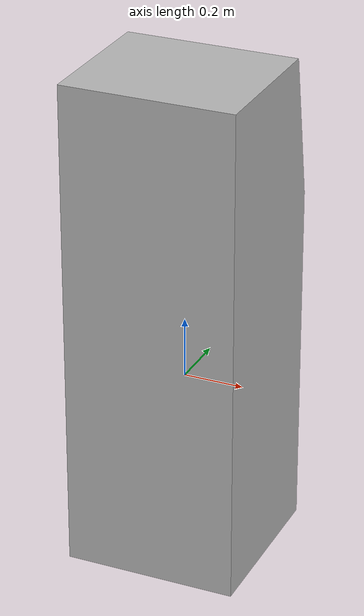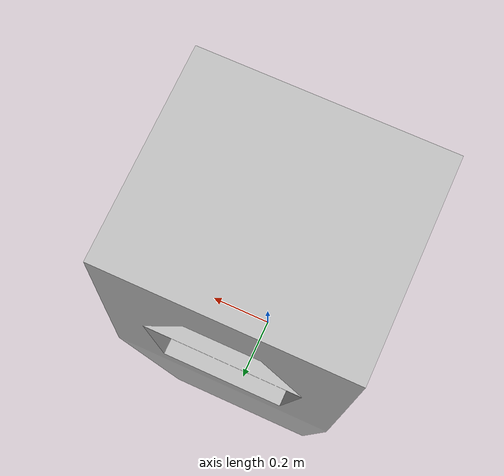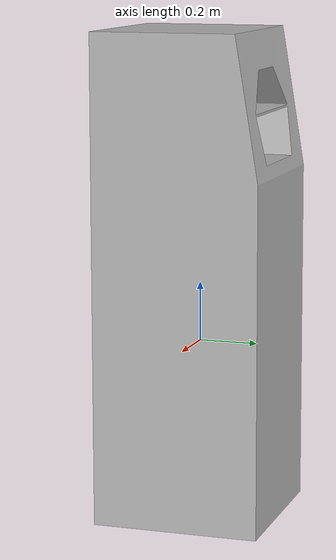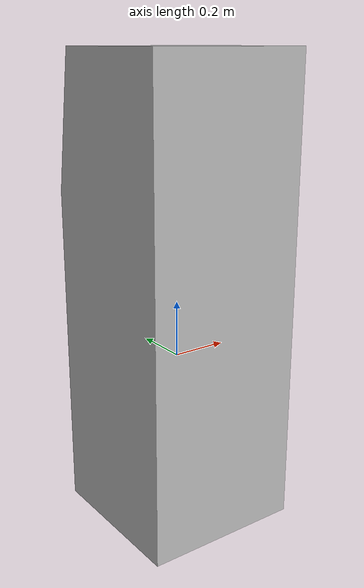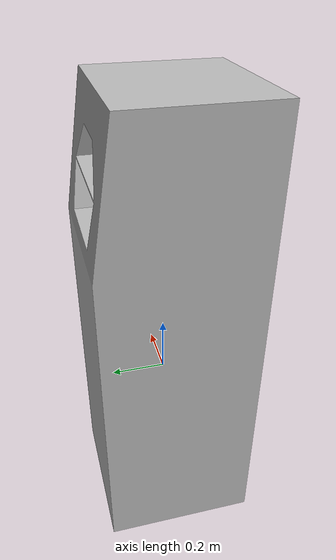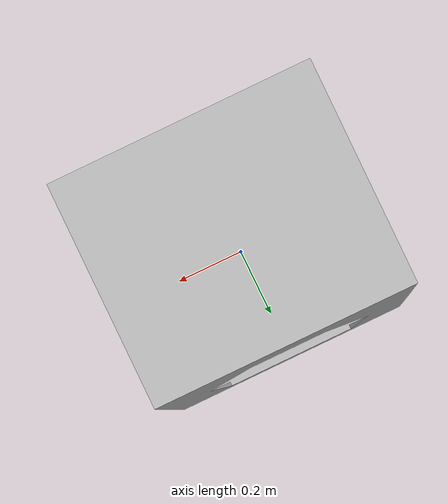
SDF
<?xml version="1.0" ?>
<sdf version="1.9">
  <model name="remeshes_gazebo">
    <static>true</static>
    <link name="Curing_link">
      <pose>0.000000 0.000000 0.000000 0.000000 0.000000 0.000000</pose>
      <visual name="Curing_visual">
        <geometry>
          <mesh>
            <uri>meshes/Curing.obj</uri>
            <scale>0.001 0.001 0.001</scale>
          </mesh>
        </geometry>
      </visual>
      <collision name="Curing_collision">
        <geometry>
          <mesh>
            <uri>meshes/Curing_col.obj</uri>
            <scale>0.001 0.001 0.001</scale>
          </mesh>
        </geometry>
      </collision>
    </link>
  </model>
</sdf>
